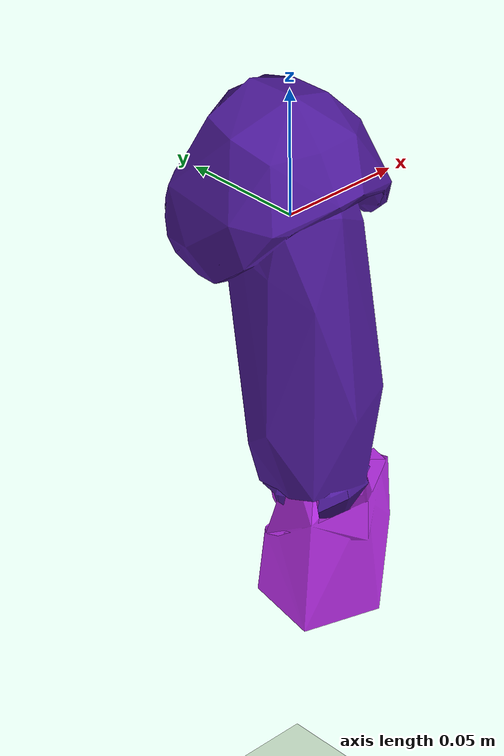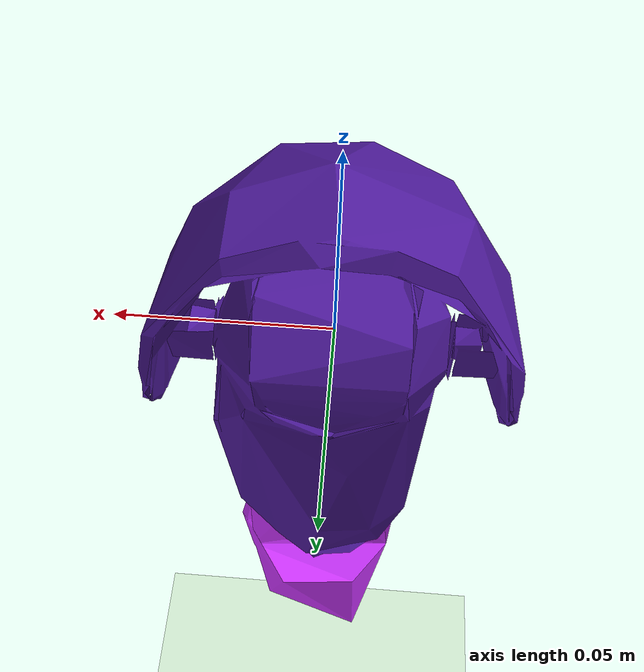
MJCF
<mujoco model="NaoH25V50">
    <compiler angle="radian" meshdir="./nao_meshes/meshes/V40/"/>
    <option integrator="RK4"/>

    <default>
        <joint  armature="1" damping="1"/>
    </default>
    <size njmax="500" nconmax="100" />
    <asset>
        <mesh name="RShoulderPitch_0.10" file="RShoulderPitch_0.10.stl" scale="0.1 0.1 0.1" />
        <mesh name="RShoulderRoll_0.10" file="RShoulderRoll_0.10.stl" scale="0.1 0.1 0.1" />
        <mesh name="RElbowRoll_0.10" file="RElbowRoll_0.10.stl" scale="0.1 0.1 0.1" />
        <mesh name="RWristYaw_0.10" file="RWristYaw_0.10.stl" scale="0.1 0.1 0.1" />
        <mesh name="RFinger21_0.10" file="RFinger21_0.10.stl" scale="0.1 0.1 0.1" />
        <mesh name="RFinger22_0.10" file="RFinger22_0.10.stl" scale="0.1 0.1 0.1" />
        <mesh name="RFinger23_0.10" file="RFinger23_0.10.stl" scale="0.1 0.1 0.1" />
        <mesh name="RFinger11_0.10" file="RFinger11_0.10.stl" scale="0.1 0.1 0.1" />
        <mesh name="RFinger12_0.10" file="RFinger12_0.10.stl" scale="0.1 0.1 0.1" />
        <mesh name="RFinger13_0.10" file="RFinger13_0.10.stl" scale="0.1 0.1 0.1" />
        <mesh name="RThumb1_0.10" file="RThumb1_0.10.stl" scale="0.1 0.1 0.1" />
        <mesh name="RThumb2_0.10" file="RThumb2_0.10.stl" scale="0.1 0.1 0.1" />
        <texture builtin="checker" height="100" name="texplane" rgb1="0 0 0" rgb2="0.8 0.8 0.8" type="2d" width="100"/>
        <material name="MatPlane" reflectance="0.5" shininess="1" specular="1" texrepeat="60 60" texture="texplane"/>
    </asset>

    <worldbody>
                <geom contype="1" conaffinity="1" condim="3" friction="1 .1 .1" material="MatPlane" name="floor" pos="0 0 -0.335" rgba="0.8 0.9 0.8 1" size="20 20 0.125" type="plane"/>

                <body name="RBicep" pos="0 0 0" quat="1 0 1 0">
                    <inertial pos="0.0213201 -0.00466808 0.0004386" quat="0.527557 0.52235 0.47264 0.474811" mass="1.7996" diaginertia="0.00363268 0.00337871 0.000658873" />
                    <joint name="RShoulderRoll" pos="0 0 0" axis="0 1 0"   type="hinge"/>
                    <joint name="RShoulderPitch" pos="0 0 0" axis="0 0 1"     type="hinge"/>
                    <geom contype="2" conaffinity="1" type="mesh" rgba="0.3 0.1 0.6 1" mesh="RShoulderRoll_0.10" />

        <body name="RElbow" pos="0.105 -0.015 0">
                        <inertial pos="-0.02744 0 -0.00014" quat="-0.000545392 0.711779 -0.000696018 0.702403" mass="0.395499" diaginertia="0.000168578 0.000162384 3.41143e-05" />
                        <joint name="RElbowYaw" pos="0 0 0" axis="0 1 0"  />
                        <body name="RForeArm" pos="0 0 0">
                            <inertial pos="0.0235942 -0.00369779 0.00274973" quat="0.397369 0.35311 0.66416 0.525645" mass="0.455913" diaginertia="0.000171173 0.000151629 0.000108766" />
                            <joint name="RElbowRoll" pos="0 0 0" axis="0 0 1"  />
                            <geom contype="2" conaffinity="1" type="mesh" rgba="0.8 0.2 1 1" mesh="RElbowRoll_0.10" />

                </body>
                </body>
                </body>

    </worldbody>
    <actuator>

        <position   gear="200.0" joint="RShoulderPitch" />
        <position   gear="200.0" joint="RShoulderRoll" />
        <position   gear="200.0" joint="RElbowYaw" />
        <position   gear="200.0" joint="RElbowRoll" />

    </actuator>
</mujoco>
